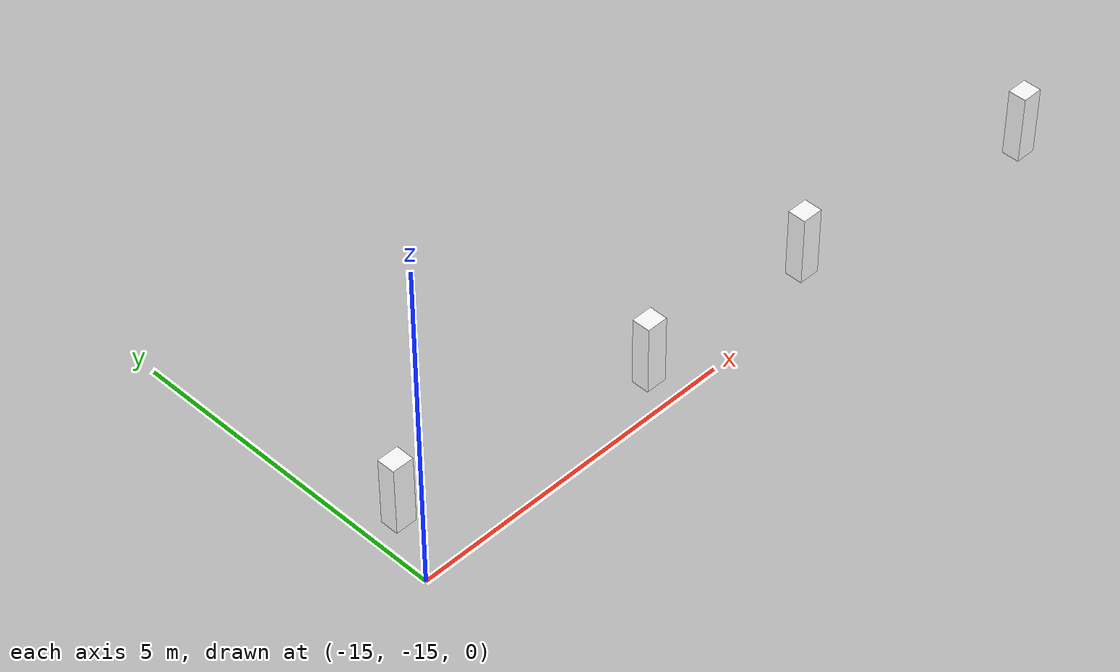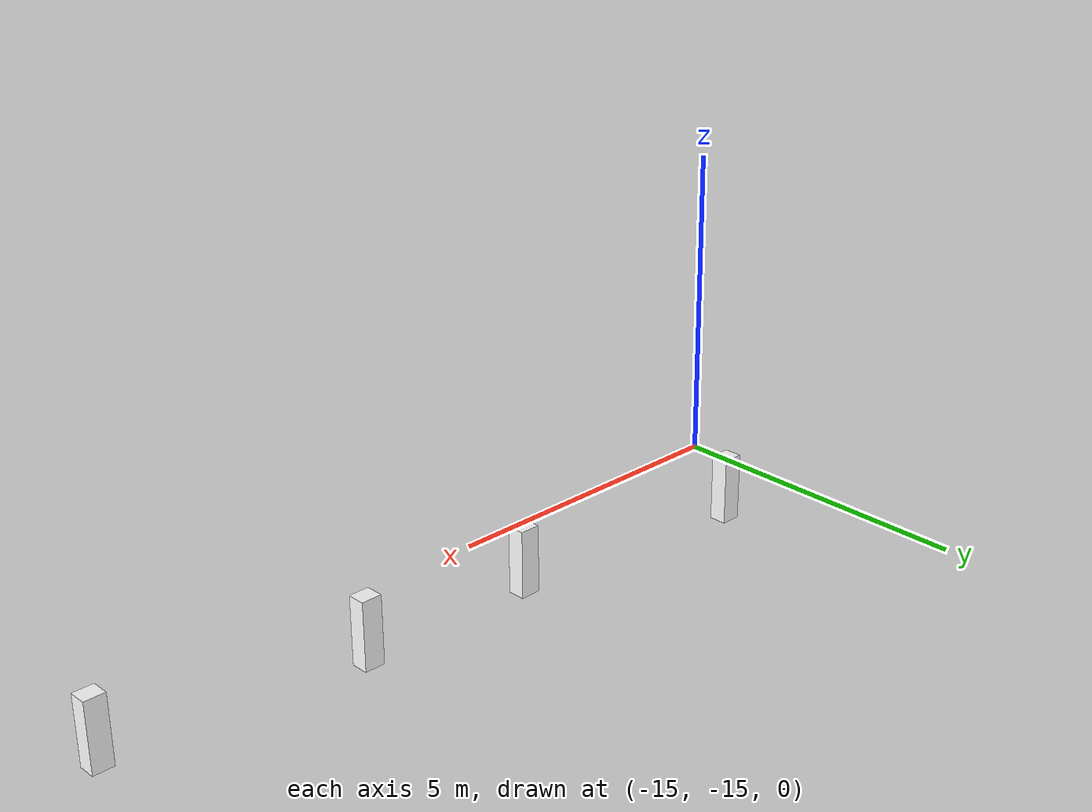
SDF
<sdf version="1.7">
 <world name="__default__">
  <model name="white_track_1">
   <link name="link">
    <inertial>
     <mass>0.0996089</mass>
     <inertia>
      <ixx>0.0105319</ixx>
      <ixy>0</ixy>
      <ixz>0</ixz>
      <iyy>0.0107538</iyy>
      <iyz>0</iyz>
      <izz>0.00152677</izz>
     </inertia>
    </inertial>
    <pose>-0.120665 -2.1745 0 0 -0 0</pose>
    <visual name="visual">
     <geometry><box><size>0.324552 0.280354 1.09096</size></box></geometry>
     <material>
      <ambient>1 1 1 1</ambient>
      <diffuse>1 1 1 1</diffuse>
      <specular>1 1 1 1</specular>
      <emissive>1 1 1 1</emissive>
     </material>
    </visual>
    <collision name="collision">
     <geometry><box><size>0.324552 0.280354 1.09096</size></box></geometry>
     <surface>
      <friction>
       <ode><mu>1</mu><mu2>1</mu2><fdir1>0 0 0</fdir1><slip1>0</slip1><slip2>0</slip2></ode>
       <torsional>
        <coefficient>1</coefficient>
        <patch_radius>0</patch_radius>
        <surface_radius>0</surface_radius>
        <use_patch_radius>1</use_patch_radius>
        <ode><slip>0</slip></ode>
       </torsional>
      </friction>
      <bounce><restitution_coefficient>0</restitution_coefficient><threshold>1e+06</threshold></bounce>
      <contact>
       <collide_without_contact>0</collide_without_contact>
       <collide_without_contact_bitmask>1</collide_without_contact_bitmask>
       <collide_bitmask>1</collide_bitmask>
       <ode>
        <soft_cfm>0</soft_cfm>
        <soft_erp>0.2</soft_erp>
        <kp>1e+13</kp>
        <kd>1</kd>
        <max_vel>0.01</max_vel>
        <min_depth>0</min_depth>
       </ode>
       <bullet>
        <split_impulse>1</split_impulse>
        <split_impulse_penetration_threshold>-0.01</split_impulse_penetration_threshold>
        <soft_cfm>0</soft_cfm>
        <soft_erp>0.2</soft_erp>
        <kp>1e+13</kp>
        <kd>1</kd>
       </bullet>
      </contact>
     </surface>
    </collision>
   </link>
   <link name="link_clone">
    <inertial>
     <mass>0.0996089</mass>
     <inertia>
      <ixx>0.0105319</ixx>
      <ixy>0</ixy>
      <ixz>0</ixz>
      <iyy>0.0107538</iyy>
      <iyz>0</iyz>
      <izz>0.00152677</izz>
     </inertia>
    </inertial>
    <pose>-4.03455 -1.67791 0 0 -0 0</pose>
    <visual name="visual">
     <geometry><box><size>0.324552 0.280354 1.09096</size></box></geometry>
     <material>
      <ambient>1 1 1 1</ambient>
      <diffuse>1 1 1 1</diffuse>
      <specular>1 1 1 1</specular>
      <emissive>1 1 1 1</emissive>
     </material>
    </visual>
    <collision name="collision">
     <geometry><box><size>0.324552 0.280354 1.09096</size></box></geometry>
     <surface>
      <friction>
       <ode><mu>1</mu><mu2>1</mu2><fdir1>0 0 0</fdir1><slip1>0</slip1><slip2>0</slip2></ode>
       <torsional>
        <coefficient>1</coefficient>
        <patch_radius>0</patch_radius>
        <surface_radius>0</surface_radius>
        <use_patch_radius>1</use_patch_radius>
        <ode><slip>0</slip></ode>
       </torsional>
      </friction>
      <bounce><restitution_coefficient>0</restitution_coefficient><threshold>1e+06</threshold></bounce>
      <contact>
       <collide_without_contact>0</collide_without_contact>
       <collide_without_contact_bitmask>1</collide_without_contact_bitmask>
       <collide_bitmask>1</collide_bitmask>
       <ode>
        <soft_cfm>0</soft_cfm>
        <soft_erp>0.2</soft_erp>
        <kp>1e+13</kp>
        <kd>1</kd>
        <max_vel>0.01</max_vel>
        <min_depth>0</min_depth>
       </ode>
       <bullet>
        <split_impulse>1</split_impulse>
        <split_impulse_penetration_threshold>-0.01</split_impulse_penetration_threshold>
        <soft_cfm>0</soft_cfm>
        <soft_erp>0.2</soft_erp>
        <kp>1e+13</kp>
        <kd>1</kd>
       </bullet>
      </contact>
     </surface>
    </collision>
   </link>
   <link name="link">
    <inertial>
     <mass>0.0996089</mass>
     <inertia>
      <ixx>0.0105319</ixx>
      <ixy>0</ixy>
      <ixz>0</ixz>
      <iyy>0.0107538</iyy>
      <iyz>0</iyz>
      <izz>0.00152677</izz>
     </inertia>
    </inertial>
    <pose>-0.120665 -2.1745 0 0 -0 0</pose>
    <visual name="visual">
     <geometry><box><size>0.324552 0.280354 1.09096</size></box></geometry>
     <material>
      <ambient>1 1 1 1</ambient>
      <diffuse>1 1 1 1</diffuse>
      <specular>1 1 1 1</specular>
      <emissive>1 1 1 1</emissive>
     </material>
    </visual>
    <collision name="collision">
     <geometry><box><size>0.324552 0.280354 1.09096</size></box></geometry>
     <surface>
      <friction>
       <ode><mu>1</mu><mu2>1</mu2><fdir1>0 0 0</fdir1><slip1>0</slip1><slip2>0</slip2></ode>
       <torsional>
        <coefficient>1</coefficient>
        <patch_radius>0</patch_radius>
        <surface_radius>0</surface_radius>
        <use_patch_radius>1</use_patch_radius>
        <ode><slip>0</slip></ode>
       </torsional>
      </friction>
      <bounce><restitution_coefficient>0</restitution_coefficient><threshold>1e+06</threshold></bounce>
      <contact>
       <collide_without_contact>0</collide_without_contact>
       <collide_without_contact_bitmask>1</collide_without_contact_bitmask>
       <collide_bitmask>1</collide_bitmask>
       <ode>
        <soft_cfm>0</soft_cfm>
        <soft_erp>0.2</soft_erp>
        <kp>1e+13</kp>
        <kd>1</kd>
        <max_vel>0.01</max_vel>
        <min_depth>0</min_depth>
       </ode>
       <bullet>
        <split_impulse>1</split_impulse>
        <split_impulse_penetration_threshold>-0.01</split_impulse_penetration_threshold>
        <soft_cfm>0</soft_cfm>
        <soft_erp>0.2</soft_erp>
        <kp>1e+13</kp>
        <kd>1</kd>
       </bullet>
      </contact>
     </surface>
    </collision>
   </link>
   <link name="link_clone">
    <inertial>
     <mass>0.0996089</mass>
     <inertia>
      <ixx>0.0105319</ixx>
      <ixy>0</ixy>
      <ixz>0</ixz>
      <iyy>0.0107538</iyy>
      <iyz>0</iyz>
      <izz>0.00152677</izz>
     </inertia>
    </inertial>
    <pose>-4.03455 -1.67791 0 0 -0 0</pose>
    <visual name="visual">
     <geometry><box><size>0.324552 0.280354 1.09096</size></box></geometry>
     <material>
      <ambient>1 1 1 1</ambient>
      <diffuse>1 1 1 1</diffuse>
      <specular>1 1 1 1</specular>
      <emissive>1 1 1 1</emissive>
     </material>
    </visual>
    <collision name="collision">
     <geometry><box><size>0.324552 0.280354 1.09096</size></box></geometry>
     <surface>
      <friction>
       <ode><mu>1</mu><mu2>1</mu2><fdir1>0 0 0</fdir1><slip1>0</slip1><slip2>0</slip2></ode>
       <torsional>
        <coefficient>1</coefficient>
        <patch_radius>0</patch_radius>
        <surface_radius>0</surface_radius>
        <use_patch_radius>1</use_patch_radius>
        <ode><slip>0</slip></ode>
       </torsional>
      </friction>
      <bounce><restitution_coefficient>0</restitution_coefficient><threshold>1e+06</threshold></bounce>
      <contact>
       <collide_without_contact>0</collide_without_contact>
       <collide_without_contact_bitmask>1</collide_without_contact_bitmask>
       <collide_bitmask>1</collide_bitmask>
       <ode>
        <soft_cfm>0</soft_cfm>
        <soft_erp>0.2</soft_erp>
        <kp>1e+13</kp>
        <kd>1</kd>
        <max_vel>0.01</max_vel>
        <min_depth>0</min_depth>
       </ode>
       <bullet>
        <split_impulse>1</split_impulse>
        <split_impulse_penetration_threshold>-0.01</split_impulse_penetration_threshold>
        <soft_cfm>0</soft_cfm>
        <soft_erp>0.2</soft_erp>
        <kp>1e+13</kp>
        <kd>1</kd>
       </bullet>
      </contact>
     </surface>
    </collision>
   </link>
   <static>0</static>
   <pose>-3.3991 -12.5234 0 0 -0 0</pose>
  </model>
  <model name="white_track_2">
   <link name="link">
    <inertial>
     <mass>0.0996089</mass>
     <inertia>
      <ixx>0.0105319</ixx>
      <ixy>0</ixy>
      <ixz>0</ixz>
      <iyy>0.0107538</iyy>
      <iyz>0</iyz>
      <izz>0.00152677</izz>
     </inertia>
    </inertial>
    <pose>-0.120665 -2.1745 0 0 -0 0</pose>
    <visual name="visual">
     <geometry><box><size>0.324552 0.280354 1.09096</size></box></geometry>
     <material>
      <ambient>1 1 1 1</ambient>
      <diffuse>1 1 1 1</diffuse>
      <specular>1 1 1 1</specular>
      <emissive>1 1 1 1</emissive>
     </material>
    </visual>
    <collision name="collision">
     <geometry><box><size>0.324552 0.280354 1.09096</size></box></geometry>
     <surface>
      <friction>
       <ode><mu>1</mu><mu2>1</mu2><fdir1>0 0 0</fdir1><slip1>0</slip1><slip2>0</slip2></ode>
       <torsional>
        <coefficient>1</coefficient>
        <patch_radius>0</patch_radius>
        <surface_radius>0</surface_radius>
        <use_patch_radius>1</use_patch_radius>
        <ode><slip>0</slip></ode>
       </torsional>
      </friction>
      <bounce><restitution_coefficient>0</restitution_coefficient><threshold>1e+06</threshold></bounce>
      <contact>
       <collide_without_contact>0</collide_without_contact>
       <collide_without_contact_bitmask>1</collide_without_contact_bitmask>
       <collide_bitmask>1</collide_bitmask>
       <ode>
        <soft_cfm>0</soft_cfm>
        <soft_erp>0.2</soft_erp>
        <kp>1e+13</kp>
        <kd>1</kd>
        <max_vel>0.01</max_vel>
        <min_depth>0</min_depth>
       </ode>
       <bullet>
        <split_impulse>1</split_impulse>
        <split_impulse_penetration_threshold>-0.01</split_impulse_penetration_threshold>
        <soft_cfm>0</soft_cfm>
        <soft_erp>0.2</soft_erp>
        <kp>1e+13</kp>
        <kd>1</kd>
       </bullet>
      </contact>
     </surface>
    </collision>
   </link>
   <link name="link_clone">
    <inertial>
     <mass>0.0996089</mass>
     <inertia>
      <ixx>0.0105319</ixx>
      <ixy>0</ixy>
      <ixz>0</ixz>
      <iyy>0.0107538</iyy>
      <iyz>0</iyz>
      <izz>0.00152677</izz>
     </inertia>
    </inertial>
    <pose>-4.03455 -1.67791 0 0 -0 0</pose>
    <visual name="visual">
     <geometry><box><size>0.324552 0.280354 1.09096</size></box></geometry>
     <material>
      <ambient>1 1 1 1</ambient>
      <diffuse>1 1 1 1</diffuse>
      <specular>1 1 1 1</specular>
      <emissive>1 1 1 1</emissive>
     </material>
    </visual>
    <collision name="collision">
     <geometry><box><size>0.324552 0.280354 1.09096</size></box></geometry>
     <surface>
      <friction>
       <ode><mu>1</mu><mu2>1</mu2><fdir1>0 0 0</fdir1><slip1>0</slip1><slip2>0</slip2></ode>
       <torsional>
        <coefficient>1</coefficient>
        <patch_radius>0</patch_radius>
        <surface_radius>0</surface_radius>
        <use_patch_radius>1</use_patch_radius>
        <ode><slip>0</slip></ode>
       </torsional>
      </friction>
      <bounce><restitution_coefficient>0</restitution_coefficient><threshold>1e+06</threshold></bounce>
      <contact>
       <collide_without_contact>0</collide_without_contact>
       <collide_without_contact_bitmask>1</collide_without_contact_bitmask>
       <collide_bitmask>1</collide_bitmask>
       <ode>
        <soft_cfm>0</soft_cfm>
        <soft_erp>0.2</soft_erp>
        <kp>1e+13</kp>
        <kd>1</kd>
        <max_vel>0.01</max_vel>
        <min_depth>0</min_depth>
       </ode>
       <bullet>
        <split_impulse>1</split_impulse>
        <split_impulse_penetration_threshold>-0.01</split_impulse_penetration_threshold>
        <soft_cfm>0</soft_cfm>
        <soft_erp>0.2</soft_erp>
        <kp>1e+13</kp>
        <kd>1</kd>
       </bullet>
      </contact>
     </surface>
    </collision>
   </link>
   <link name="link">
    <inertial>
     <mass>0.0996089</mass>
     <inertia>
      <ixx>0.0105319</ixx>
      <ixy>0</ixy>
      <ixz>0</ixz>
      <iyy>0.0107538</iyy>
      <iyz>0</iyz>
      <izz>0.00152677</izz>
     </inertia>
    </inertial>
    <pose>-0.120665 -2.1745 0 0 -0 0</pose>
    <visual name="visual">
     <geometry><box><size>0.324552 0.280354 1.09096</size></box></geometry>
     <material>
      <ambient>1 1 1 1</ambient>
      <diffuse>1 1 1 1</diffuse>
      <specular>1 1 1 1</specular>
      <emissive>1 1 1 1</emissive>
     </material>
    </visual>
    <collision name="collision">
     <geometry><box><size>0.324552 0.280354 1.09096</size></box></geometry>
     <surface>
      <friction>
       <ode><mu>1</mu><mu2>1</mu2><fdir1>0 0 0</fdir1><slip1>0</slip1><slip2>0</slip2></ode>
       <torsional>
        <coefficient>1</coefficient>
        <patch_radius>0</patch_radius>
        <surface_radius>0</surface_radius>
        <use_patch_radius>1</use_patch_radius>
        <ode><slip>0</slip></ode>
       </torsional>
      </friction>
      <bounce><restitution_coefficient>0</restitution_coefficient><threshold>1e+06</threshold></bounce>
      <contact>
       <collide_without_contact>0</collide_without_contact>
       <collide_without_contact_bitmask>1</collide_without_contact_bitmask>
       <collide_bitmask>1</collide_bitmask>
       <ode>
        <soft_cfm>0</soft_cfm>
        <soft_erp>0.2</soft_erp>
        <kp>1e+13</kp>
        <kd>1</kd>
        <max_vel>0.01</max_vel>
        <min_depth>0</min_depth>
       </ode>
       <bullet>
        <split_impulse>1</split_impulse>
        <split_impulse_penetration_threshold>-0.01</split_impulse_penetration_threshold>
        <soft_cfm>0</soft_cfm>
        <soft_erp>0.2</soft_erp>
        <kp>1e+13</kp>
        <kd>1</kd>
       </bullet>
      </contact>
     </surface>
    </collision>
   </link>
   <link name="link_clone">
    <inertial>
     <mass>0.0996089</mass>
     <inertia>
      <ixx>0.0105319</ixx>
      <ixy>0</ixy>
      <ixz>0</ixz>
      <iyy>0.0107538</iyy>
      <iyz>0</iyz>
      <izz>0.00152677</izz>
     </inertia>
    </inertial>
    <pose>-4.03455 -1.67791 0 0 -0 0</pose>
    <visual name="visual">
     <geometry><box><size>0.324552 0.280354 1.09096</size></box></geometry>
     <material>
      <ambient>1 1 1 1</ambient>
      <diffuse>1 1 1 1</diffuse>
      <specular>1 1 1 1</specular>
      <emissive>1 1 1 1</emissive>
     </material>
    </visual>
    <collision name="collision">
     <geometry><box><size>0.324552 0.280354 1.09096</size></box></geometry>
     <surface>
      <friction>
       <ode><mu>1</mu><mu2>1</mu2><fdir1>0 0 0</fdir1><slip1>0</slip1><slip2>0</slip2></ode>
       <torsional>
        <coefficient>1</coefficient>
        <patch_radius>0</patch_radius>
        <surface_radius>0</surface_radius>
        <use_patch_radius>1</use_patch_radius>
        <ode><slip>0</slip></ode>
       </torsional>
      </friction>
      <bounce><restitution_coefficient>0</restitution_coefficient><threshold>1e+06</threshold></bounce>
      <contact>
       <collide_without_contact>0</collide_without_contact>
       <collide_without_contact_bitmask>1</collide_without_contact_bitmask>
       <collide_bitmask>1</collide_bitmask>
       <ode>
        <soft_cfm>0</soft_cfm>
        <soft_erp>0.2</soft_erp>
        <kp>1e+13</kp>
        <kd>1</kd>
        <max_vel>0.01</max_vel>
        <min_depth>0</min_depth>
       </ode>
       <bullet>
        <split_impulse>1</split_impulse>
        <split_impulse_penetration_threshold>-0.01</split_impulse_penetration_threshold>
        <soft_cfm>0</soft_cfm>
        <soft_erp>0.2</soft_erp>
        <kp>1e+13</kp>
        <kd>1</kd>
       </bullet>
      </contact>
     </surface>
    </collision>
   </link>
   <static>0</static>
   <pose>-10.2059 -11.9953 0 0 -0 0</pose>
  </model>
 </world>
</sdf>
